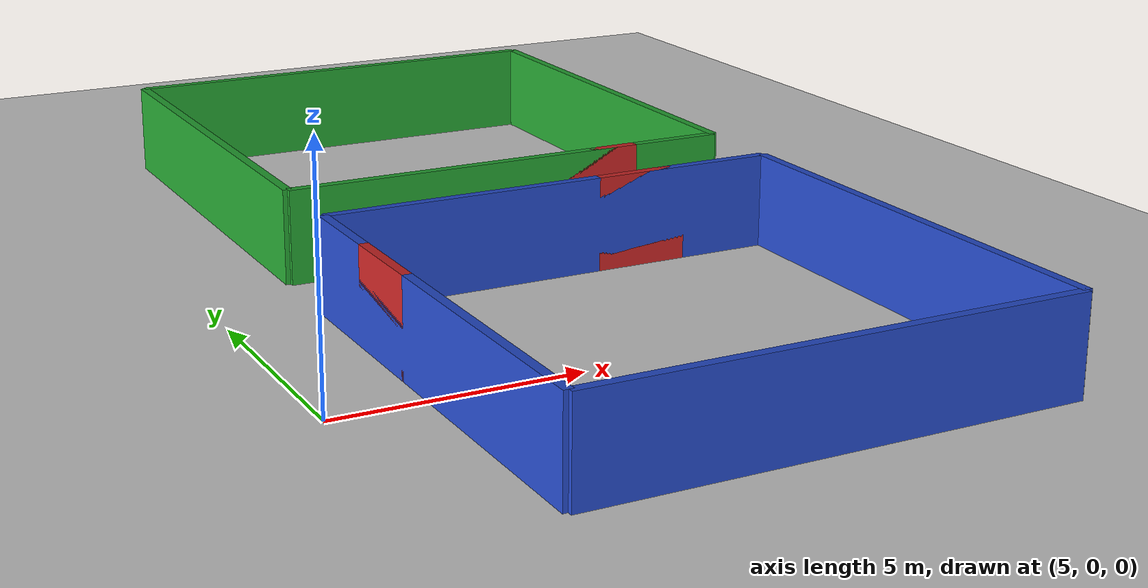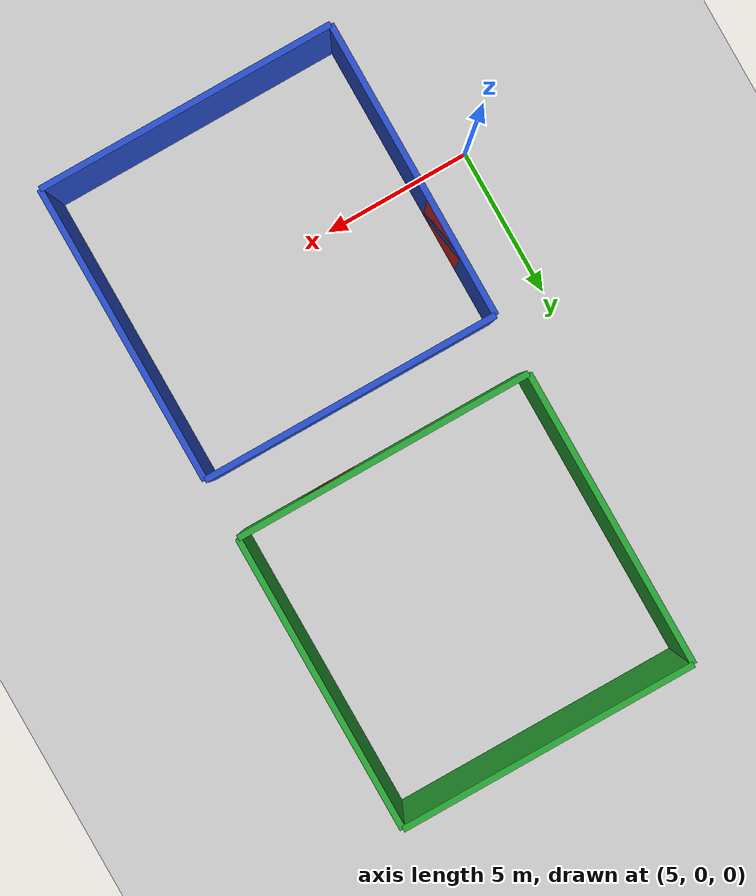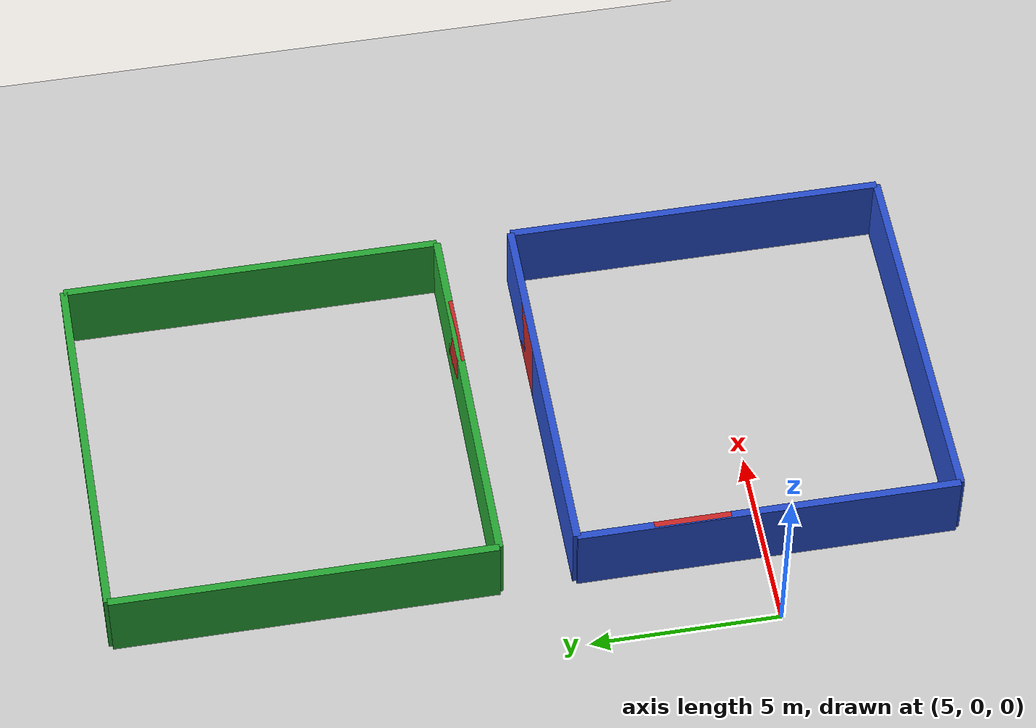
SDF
<sdf version="1.6">
 <world name="multi_room_world">
  <include><uri>model://ground_plane</uri></include>
  <include><uri>model://sun</uri></include>
  <model name="room2">
   <static>true</static>
   <pose>12 0 0 0 0 0</pose>
   <link name="wall_north">
    <pose>0 5 1 0 0 0</pose>
    <collision name="collision"><geometry><box><size>10 0.2 2</size></box></geometry></collision>
    <visual name="visual">
     <geometry><box><size>10 0.2 2</size></box></geometry>
     <material>
      <script><uri>file://media/materials/scripts/gazebo.material</uri><name>Gazebo/Blue</name></script>
     </material>
    </visual>
   </link>
   <link name="wall_south">
    <pose>0 -5 1 0 0 0</pose>
    <collision name="collision"><geometry><box><size>10 0.2 2</size></box></geometry></collision>
    <visual name="visual">
     <geometry><box><size>10 0.2 2</size></box></geometry>
     <material>
      <script><uri>file://media/materials/scripts/gazebo.material</uri><name>Gazebo/Blue</name></script>
     </material>
    </visual>
   </link>
   <link name="wall_east">
    <pose>5 0 1 0 0 0</pose>
    <collision name="collision"><geometry><box><size>0.2 10 2</size></box></geometry></collision>
    <visual name="visual">
     <geometry><box><size>0.2 10 2</size></box></geometry>
     <material>
      <script><uri>file://media/materials/scripts/gazebo.material</uri><name>Gazebo/Blue</name></script>
     </material>
    </visual>
   </link>
   <link name="wall_west">
    <pose>-5 0 1 0 0 0</pose>
    <collision name="collision"><geometry><box><size>0.2 10 2</size></box></geometry></collision>
    <visual name="visual">
     <geometry><box><size>0.2 10 2</size></box></geometry>
     <material>
      <script><uri>file://media/materials/scripts/gazebo.material</uri><name>Gazebo/Blue</name></script>
     </material>
    </visual>
   </link>
   <link name="door_to_room1">
    <pose>-5 2 1 0 0 0</pose>
    <visual name="visual">
     <geometry><box><size>0.2 2 2</size></box></geometry>
     <material>
      <script><uri>file://media/materials/scripts/gazebo.material</uri><name>Gazebo/Red</name></script>
     </material>
    </visual>
   </link>
   <link name="door_to_room3">
    <pose>2 5 1 0 0 0</pose>
    <visual name="visual">
     <geometry><box><size>2 0.2 2</size></box></geometry>
     <material>
      <script><uri>file://media/materials/scripts/gazebo.material</uri><name>Gazebo/Red</name></script>
     </material>
    </visual>
   </link>
  </model>
  <model name="room3">
   <static>true</static>
   <pose>12 12 0 0 0 0</pose>
   <link name="wall_north">
    <pose>0 5 1 0 0 0</pose>
    <collision name="collision"><geometry><box><size>10 0.2 2</size></box></geometry></collision>
    <visual name="visual">
     <geometry><box><size>10 0.2 2</size></box></geometry>
     <material>
      <script><uri>file://media/materials/scripts/gazebo.material</uri><name>Gazebo/Green</name></script>
     </material>
    </visual>
   </link>
   <link name="wall_south">
    <pose>0 -5 1 0 0 0</pose>
    <collision name="collision"><geometry><box><size>10 0.2 2</size></box></geometry></collision>
    <visual name="visual">
     <geometry><box><size>10 0.2 2</size></box></geometry>
     <material>
      <script><uri>file://media/materials/scripts/gazebo.material</uri><name>Gazebo/Green</name></script>
     </material>
    </visual>
   </link>
   <link name="wall_east">
    <pose>5 0 1 0 0 0</pose>
    <collision name="collision"><geometry><box><size>0.2 10 2</size></box></geometry></collision>
    <visual name="visual">
     <geometry><box><size>0.2 10 2</size></box></geometry>
     <material>
      <script><uri>file://media/materials/scripts/gazebo.material</uri><name>Gazebo/Green</name></script>
     </material>
    </visual>
   </link>
   <link name="wall_west">
    <pose>-5 0 1 0 0 0</pose>
    <collision name="collision"><geometry><box><size>0.2 10 2</size></box></geometry></collision>
    <visual name="visual">
     <geometry><box><size>0.2 10 2</size></box></geometry>
     <material>
      <script><uri>file://media/materials/scripts/gazebo.material</uri><name>Gazebo/Green</name></script>
     </material>
    </visual>
   </link>
   <link name="door_to_room2">
    <pose>2 -5 1 0 0 0</pose>
    <visual name="visual">
     <geometry><box><size>2 0.2 2</size></box></geometry>
     <material>
      <script><uri>file://media/materials/scripts/gazebo.material</uri><name>Gazebo/Red</name></script>
     </material>
    </visual>
   </link>
  </model>
  <model name="map1_label">
   <static>true</static>
   <pose>0 0 3 0 0 0</pose>
   <link name="text_link">
    <visual name="visual">
     <geometry><box><size>0.1 0.1 0.1</size></box></geometry>
     <material>
      <script><uri>file://media/materials/scripts/gazebo.material</uri><name>Gazebo/White</name></script>
     </material>
     <transparency>1</transparency>
     <plugin name="map1_label_plugin" filename="libTextVisualPlugin.so">
      <text>MAP 1</text>
      <font_size>20</font_size>
      <color>1 1 1 1</color>
     </plugin>
    </visual>
   </link>
  </model>
  <model name="map2_label">
   <static>true</static>
   <pose>12 0 3 0 0 0</pose>
   <link name="text_link">
    <visual name="visual">
     <geometry><box><size>0.1 0.1 0.1</size></box></geometry>
     <material>
      <script><uri>file://media/materials/scripts/gazebo.material</uri><name>Gazebo/White</name></script>
     </material>
     <transparency>1</transparency>
     <plugin name="map2_label_plugin" filename="libTextVisualPlugin.so">
      <text>MAP 2</text>
      <font_size>20</font_size>
      <color>1 1 1 1</color>
     </plugin>
    </visual>
   </link>
  </model>
  <model name="map3_label">
   <static>true</static>
   <pose>12 12 3 0 0 0</pose>
   <link name="text_link">
    <visual name="visual">
     <geometry><box><size>0.1 0.1 0.1</size></box></geometry>
     <material>
      <script><uri>file://media/materials/scripts/gazebo.material</uri><name>Gazebo/White</name></script>
     </material>
     <transparency>1</transparency>
     <plugin name="map3_label_plugin" filename="libTextVisualPlugin.so">
      <text>MAP 3</text>
      <font_size>20</font_size>
      <color>1 1 1 1</color>
     </plugin>
    </visual>
   </link>
  </model>
 </world>
</sdf>
